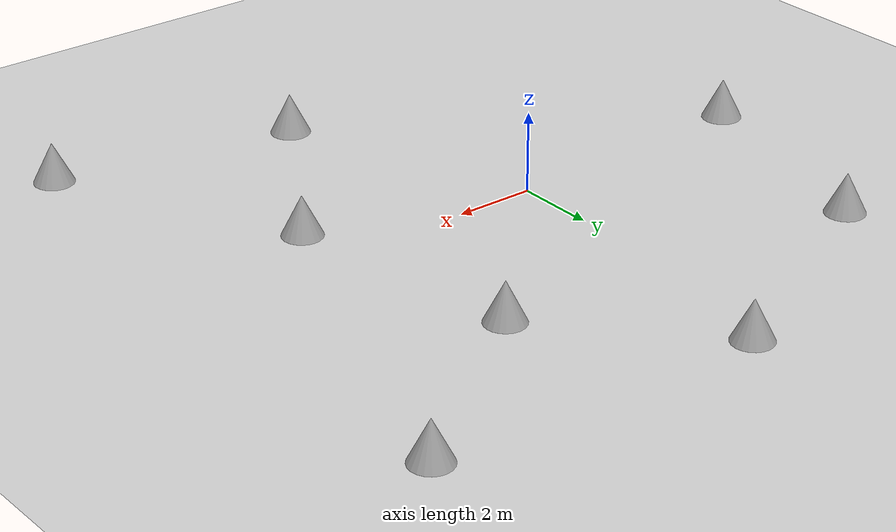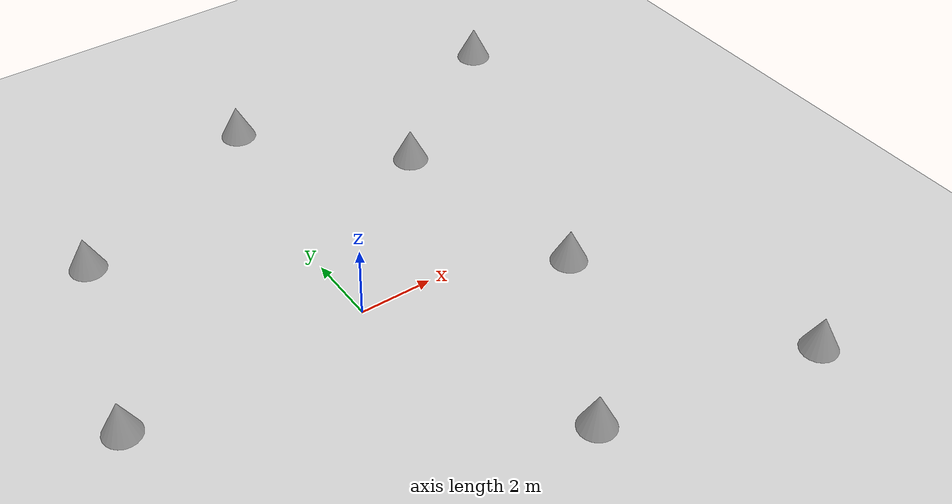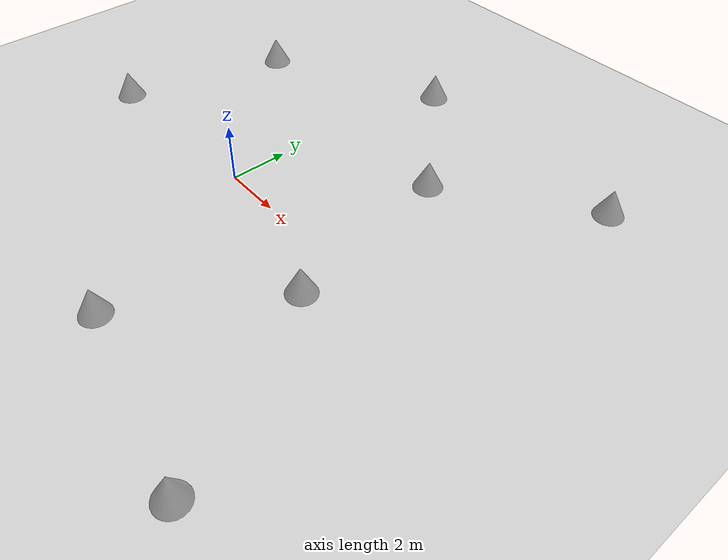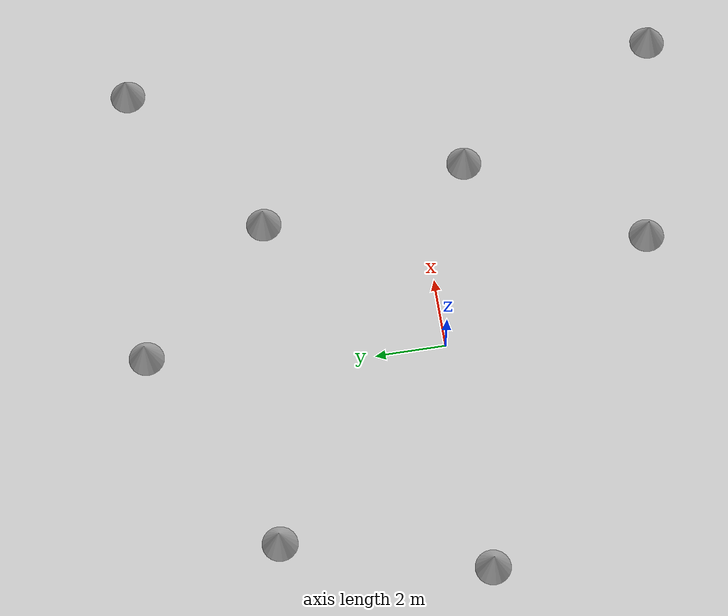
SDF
<sdf version='1.10'>
  <world name='test_world'>
    <plugin name='gz::sim::systems::Physics' filename='gz-sim-physics-system'/>
    <plugin name='gz::sim::systems::UserCommands' filename='gz-sim-user-commands-system'/>
    <plugin name='gz::sim::systems::SceneBroadcaster' filename='gz-sim-scene-broadcaster-system'/>
    <plugin name='gz::sim::systems::NavSat' filename='gz-sim-navsat-system'/>
    <spherical_coordinates>
      <surface_model>EARTH_WGS84</surface_model>
      <latitude_deg>48.192</latitude_deg>
      <longitude_deg>-114.313</longitude_deg>
      <elevation>900</elevation>
      <heading_deg>0</heading_deg>
    </spherical_coordinates>
    <gravity>0 0 -9.8000000000000007</gravity>
    <magnetic_field>5.5644999999999998e-06 2.2875799999999999e-05 -4.2388400000000002e-05</magnetic_field>
    <atmosphere type='adiabatic'/>
    <physics type='ode'>
      <max_step_size>0.001</max_step_size>
      <real_time_factor>1</real_time_factor>
      <real_time_update_rate>1000</real_time_update_rate>
    </physics>
    <scene>
      <ambient>0.400000006 0.400000006 0.400000006 1</ambient>
      <background>0.699999988 0.699999988 0.699999988 1</background>
      <shadows>true</shadows>
    </scene>
    <model name='ground_plane'>
      <static>true</static>
      <link name='link'>
        <collision name='collision'>
          <geometry>
            <plane>
              <normal>0 0 1</normal>
              <size>1 1</size>
            </plane>
          </geometry>
          <surface>
            <friction>
              <ode/>
            </friction>
            <bounce/>
            <contact/>
          </surface>
        </collision>
        <visual name='visual'>
          <geometry>
            <plane>
              <normal>0 0 1</normal>
              <size>100 100</size>
            </plane>
          </geometry>
          <material>
            <ambient>0.800000012 0.800000012 0.800000012 1</ambient>
            <diffuse>0.800000012 0.800000012 0.800000012 1</diffuse>
          </material>
        </visual>
        <pose>0 0 0 0 0 0</pose>
        <inertial>
          <pose>0 0 0 0 0 0</pose>
          <mass>1</mass>
          <inertia>
            <ixx>1</ixx>
            <ixy>0</ixy>
            <ixz>0</ixz>
            <iyy>1</iyy>
            <iyz>0</iyz>
            <izz>1</izz>
          </inertia>
        </inertial>
        <enable_wind>false</enable_wind>
      </link>
      <pose>0 0 0 0 0 0</pose>
      <self_collide>false</self_collide>
    </model>
    <model name='cone'>
      <pose>4.462910871386482 4.5040698821135914 0.49999999993296756 5.2541471503228405e-17 -7.7132841033694056e-10 -2.8937183272912105e-22</pose>
      <link name='cone_link'>
        <inertial>
          <inertia>
            <ixx>0.074999999999999997</ixx>
            <ixy>0</ixy>
            <ixz>0</ixz>
            <iyy>0.074999999999999997</iyy>
            <iyz>0</iyz>
            <izz>0.074999999999999997</izz>
          </inertia>
          <mass>1</mass>
          <pose>0 0 0 0 0 0</pose>
        </inertial>
        <collision name='cone_collision'>
          <geometry>
            <cone>
              <radius>0.5</radius>
              <length>1</length>
            </cone>
          </geometry>
          <surface>
            <friction>
              <ode/>
            </friction>
            <bounce/>
            <contact/>
          </surface>
        </collision>
        <visual name='cone_visual'>
          <geometry>
            <cone>
              <radius>0.5</radius>
              <length>1</length>
            </cone>
          </geometry>
          <material>
            <ambient>0.300000012 0.300000012 0.300000012 1</ambient>
            <diffuse>0.699999988 0.699999988 0.699999988 1</diffuse>
            <specular>1 1 1 1</specular>
          </material>
        </visual>
        <pose>0 0 0 0 0 0</pose>
        <enable_wind>false</enable_wind>
      </link>
      <static>false</static>
      <self_collide>false</self_collide>
    </model>
    <model name='cone_0'>
      <pose>2.4056721288428684 -6.1947437639317826 0.49999999993296756 5.2541471503228405e-17 -7.7132841033694056e-10 -2.8937183272912105e-22</pose>
      <link name='cone_link'>
        <inertial>
          <inertia>
            <ixx>0.074999999999999997</ixx>
            <ixy>0</ixy>
            <ixz>0</ixz>
            <iyy>0.074999999999999997</iyy>
            <iyz>0</iyz>
            <izz>0.074999999999999997</izz>
          </inertia>
          <mass>1</mass>
          <pose>0 0 0 0 0 0</pose>
        </inertial>
        <collision name='cone_collision'>
          <geometry>
            <cone>
              <radius>0.5</radius>
              <length>1</length>
            </cone>
          </geometry>
          <surface>
            <friction>
              <ode/>
            </friction>
            <bounce/>
            <contact/>
          </surface>
        </collision>
        <visual name='cone_visual'>
          <geometry>
            <cone>
              <radius>0.5</radius>
              <length>1</length>
            </cone>
          </geometry>
          <material>
            <ambient>0.300000012 0.300000012 0.300000012 1</ambient>
            <diffuse>0.699999988 0.699999988 0.699999988 1</diffuse>
            <specular>1 1 1 1</specular>
          </material>
        </visual>
        <pose>0 0 0 0 0 0</pose>
        <enable_wind>false</enable_wind>
      </link>
      <static>false</static>
      <self_collide>false</self_collide>
    </model>
    <model name='cone_1'>
      <pose>5.4478206097270121 -1.4458696219671907 0.49999999993296756 5.254931119316858e-17 -7.7132841033999823e-10 6.969765996526587e-23</pose>
      <link name='cone_link'>
        <inertial>
          <inertia>
            <ixx>0.074999999999999997</ixx>
            <ixy>0</ixy>
            <ixz>0</ixz>
            <iyy>0.074999999999999997</iyy>
            <iyz>0</iyz>
            <izz>0.074999999999999997</izz>
          </inertia>
          <mass>1</mass>
          <pose>0 0 0 0 0 0</pose>
        </inertial>
        <collision name='cone_collision'>
          <geometry>
            <cone>
              <radius>0.5</radius>
              <length>1</length>
            </cone>
          </geometry>
          <surface>
            <friction>
              <ode/>
            </friction>
            <bounce/>
            <contact/>
          </surface>
        </collision>
        <visual name='cone_visual'>
          <geometry>
            <cone>
              <radius>0.5</radius>
              <length>1</length>
            </cone>
          </geometry>
          <material>
            <ambient>0.300000012 0.300000012 0.300000012 1</ambient>
            <diffuse>0.699999988 0.699999988 0.699999988 1</diffuse>
            <specular>1 1 1 1</specular>
          </material>
        </visual>
        <pose>0 0 0 0 0 0</pose>
        <enable_wind>false</enable_wind>
      </link>
      <static>false</static>
      <self_collide>false</self_collide>
    </model>
    <model name='cone_2'>
      <pose>-4.9759786115545666 5.4274821527061121 0.49999999993296756 5.2541471503228405e-17 -7.7132841033694056e-10 -2.8937183272912105e-22</pose>
      <link name='cone_link'>
        <inertial>
          <inertia>
            <ixx>0.074999999999999997</ixx>
            <ixy>0</ixy>
            <ixz>0</ixz>
            <iyy>0.074999999999999997</iyy>
            <iyz>0</iyz>
            <izz>0.074999999999999997</izz>
          </inertia>
          <mass>1</mass>
          <pose>0 0 0 0 0 0</pose>
        </inertial>
        <collision name='cone_collision'>
          <geometry>
            <cone>
              <radius>0.5</radius>
              <length>1</length>
            </cone>
          </geometry>
          <surface>
            <friction>
              <ode/>
            </friction>
            <bounce/>
            <contact/>
          </surface>
        </collision>
        <visual name='cone_visual'>
          <geometry>
            <cone>
              <radius>0.5</radius>
              <length>1</length>
            </cone>
          </geometry>
          <material>
            <ambient>0.300000012 0.300000012 0.300000012 1</ambient>
            <diffuse>0.699999988 0.699999988 0.699999988 1</diffuse>
            <specular>1 1 1 1</specular>
          </material>
        </visual>
        <pose>0 0 0 0 0 0</pose>
        <enable_wind>false</enable_wind>
      </link>
      <static>false</static>
      <self_collide>false</self_collide>
    </model>
    <model name='cone_3'>
      <pose>0.95382125711060661 8.322615682648479 0.49999999993296756 5.254112337112289e-17 -7.7132841035481852e-10 1.1756787404075212e-22</pose>
      <link name='cone_link'>
        <inertial>
          <inertia>
            <ixx>0.074999999999999997</ixx>
            <ixy>0</ixy>
            <ixz>0</ixz>
            <iyy>0.074999999999999997</iyy>
            <iyz>0</iyz>
            <izz>0.074999999999999997</izz>
          </inertia>
          <mass>1</mass>
          <pose>0 0 0 0 0 0</pose>
        </inertial>
        <collision name='cone_collision'>
          <geometry>
            <cone>
              <radius>0.5</radius>
              <length>1</length>
            </cone>
          </geometry>
          <surface>
            <friction>
              <ode/>
            </friction>
            <bounce/>
            <contact/>
          </surface>
        </collision>
        <visual name='cone_visual'>
          <geometry>
            <cone>
              <radius>0.5</radius>
              <length>1</length>
            </cone>
          </geometry>
          <material>
            <ambient>0.300000012 0.300000012 0.300000012 1</ambient>
            <diffuse>0.699999988 0.699999988 0.699999988 1</diffuse>
            <specular>1 1 1 1</specular>
          </material>
        </visual>
        <pose>0 0 0 0 0 0</pose>
        <enable_wind>false</enable_wind>
      </link>
      <static>false</static>
      <self_collide>false</self_collide>
    </model>
    <model name='cone_4'>
      <pose>9.0824031906675575 7.814129939194328 0.49999999993296756 5.2547914536491295e-17 -7.7132841041237457e-10 -2.2343632708924469e-22</pose>
      <link name='cone_link'>
        <inertial>
          <inertia>
            <ixx>0.074999999999999997</ixx>
            <ixy>0</ixy>
            <ixz>0</ixz>
            <iyy>0.074999999999999997</iyy>
            <iyz>0</iyz>
            <izz>0.074999999999999997</izz>
          </inertia>
          <mass>1</mass>
          <pose>0 0 0 0 0 0</pose>
        </inertial>
        <collision name='cone_collision'>
          <geometry>
            <cone>
              <radius>0.5</radius>
              <length>1</length>
            </cone>
          </geometry>
          <surface>
            <friction>
              <ode/>
            </friction>
            <bounce/>
            <contact/>
          </surface>
        </collision>
        <visual name='cone_visual'>
          <geometry>
            <cone>
              <radius>0.5</radius>
              <length>1</length>
            </cone>
          </geometry>
          <material>
            <ambient>0.300000012 0.300000012 0.300000012 1</ambient>
            <diffuse>0.699999988 0.699999988 0.699999988 1</diffuse>
            <specular>1 1 1 1</specular>
          </material>
        </visual>
        <pose>0 0 0 0 0 0</pose>
        <enable_wind>false</enable_wind>
      </link>
      <static>false</static>
      <self_collide>false</self_collide>
    </model>
    <model name='cone_5'>
      <pose>-6.5527486162382704 -0.19739588269871652 0.49999999993296756 5.2548796809514258e-17 -7.713284104153184e-10 1.6414841317541989e-22</pose>
      <link name='cone_link'>
        <inertial>
          <inertia>
            <ixx>0.074999999999999997</ixx>
            <ixy>0</ixy>
            <ixz>0</ixz>
            <iyy>0.074999999999999997</iyy>
            <iyz>0</iyz>
            <izz>0.074999999999999997</izz>
          </inertia>
          <mass>1</mass>
          <pose>0 0 0 0 0 0</pose>
        </inertial>
        <collision name='cone_collision'>
          <geometry>
            <cone>
              <radius>0.5</radius>
              <length>1</length>
            </cone>
          </geometry>
          <surface>
            <friction>
              <ode/>
            </friction>
            <bounce/>
            <contact/>
          </surface>
        </collision>
        <visual name='cone_visual'>
          <geometry>
            <cone>
              <radius>0.5</radius>
              <length>1</length>
            </cone>
          </geometry>
          <material>
            <ambient>0.300000012 0.300000012 0.300000012 1</ambient>
            <diffuse>0.699999988 0.699999988 0.699999988 1</diffuse>
            <specular>1 1 1 1</specular>
          </material>
        </visual>
        <pose>0 0 0 0 0 0</pose>
        <enable_wind>false</enable_wind>
      </link>
      <static>false</static>
      <self_collide>false</self_collide>
    </model>
    <model name='cone_6'>
      <pose>8.4077717016318925 -7.3778366858445219 0.49999999993296756 5.2539673238603227e-17 -7.7132841034849224e-10 -2.2042306062451038e-22</pose>
      <link name='cone_link'>
        <inertial>
          <inertia>
            <ixx>0.074999999999999997</ixx>
            <ixy>0</ixy>
            <ixz>0</ixz>
            <iyy>0.074999999999999997</iyy>
            <iyz>0</iyz>
            <izz>0.074999999999999997</izz>
          </inertia>
          <mass>1</mass>
          <pose>0 0 0 0 0 0</pose>
        </inertial>
        <collision name='cone_collision'>
          <geometry>
            <cone>
              <radius>0.5</radius>
              <length>1</length>
            </cone>
          </geometry>
          <surface>
            <friction>
              <ode/>
            </friction>
            <bounce/>
            <contact/>
          </surface>
        </collision>
        <visual name='cone_visual'>
          <geometry>
            <cone>
              <radius>0.5</radius>
              <length>1</length>
            </cone>
          </geometry>
          <material>
            <ambient>0.300000012 0.300000012 0.300000012 1</ambient>
            <diffuse>0.699999988 0.699999988 0.699999988 1</diffuse>
            <specular>1 1 1 1</specular>
          </material>
        </visual>
        <pose>0 0 0 0 0 0</pose>
        <enable_wind>false</enable_wind>
      </link>
      <static>false</static>
      <self_collide>false</self_collide>
    </model>
    <light name='sun' type='directional'>
      <pose>0 0 10 0 0 0</pose>
      <cast_shadows>true</cast_shadows>
      <intensity>1</intensity>
      <direction>-0.5 0.10000000000000001 -0.90000000000000002</direction>
      <diffuse>0.800000012 0.800000012 0.800000012 1</diffuse>
      <specular>0.200000003 0.200000003 0.200000003 1</specular>
      <attenuation>
        <range>10</range>
        <linear>1</linear>
        <constant>1</constant>
        <quadratic>0</quadratic>
      </attenuation>
      <spot>
        <inner_angle>0</inner_angle>
        <outer_angle>0</outer_angle>
        <falloff>0</falloff>
      </spot>
    </light>
  </world>
</sdf>
